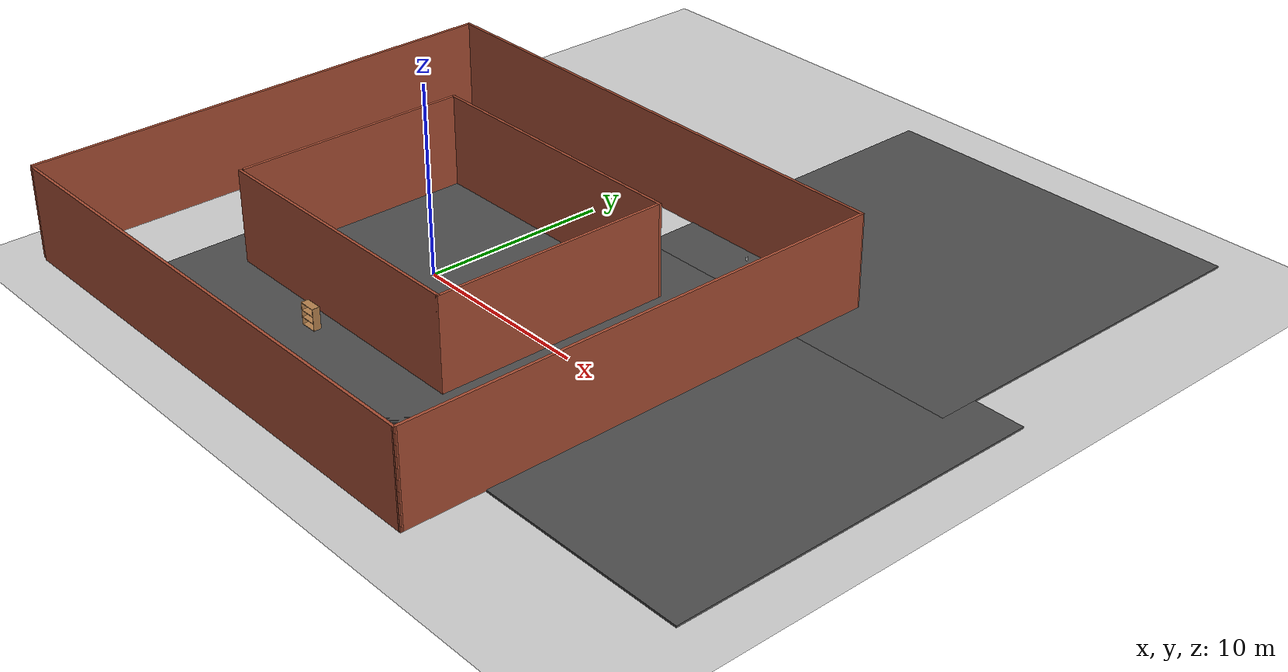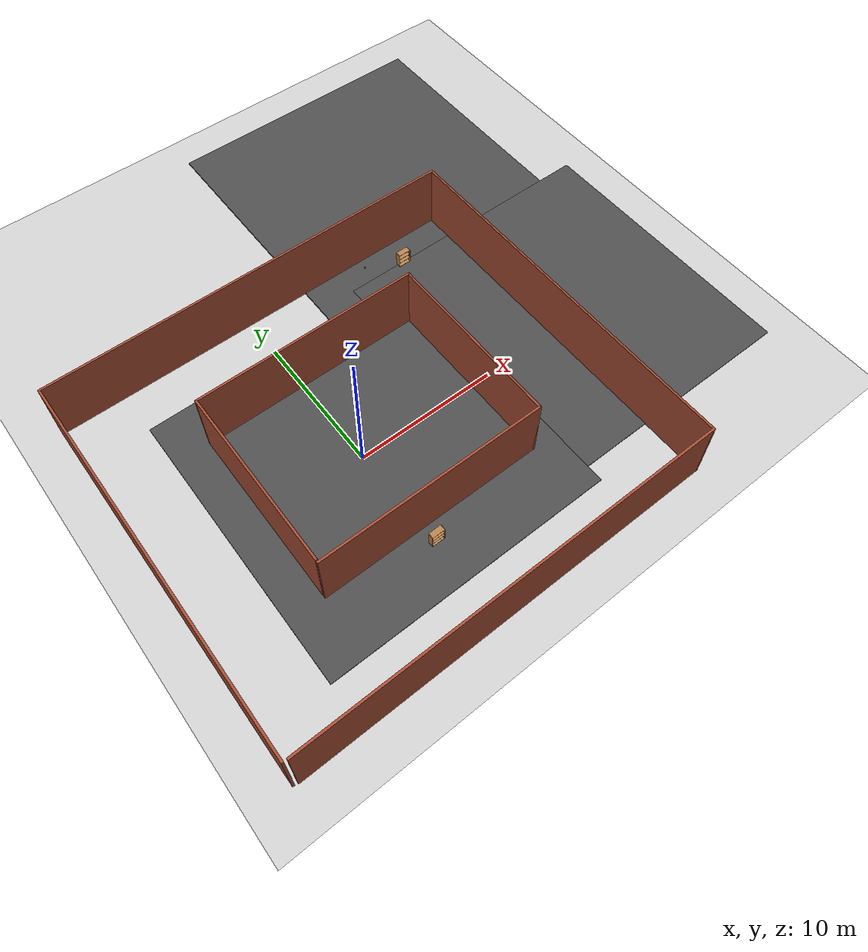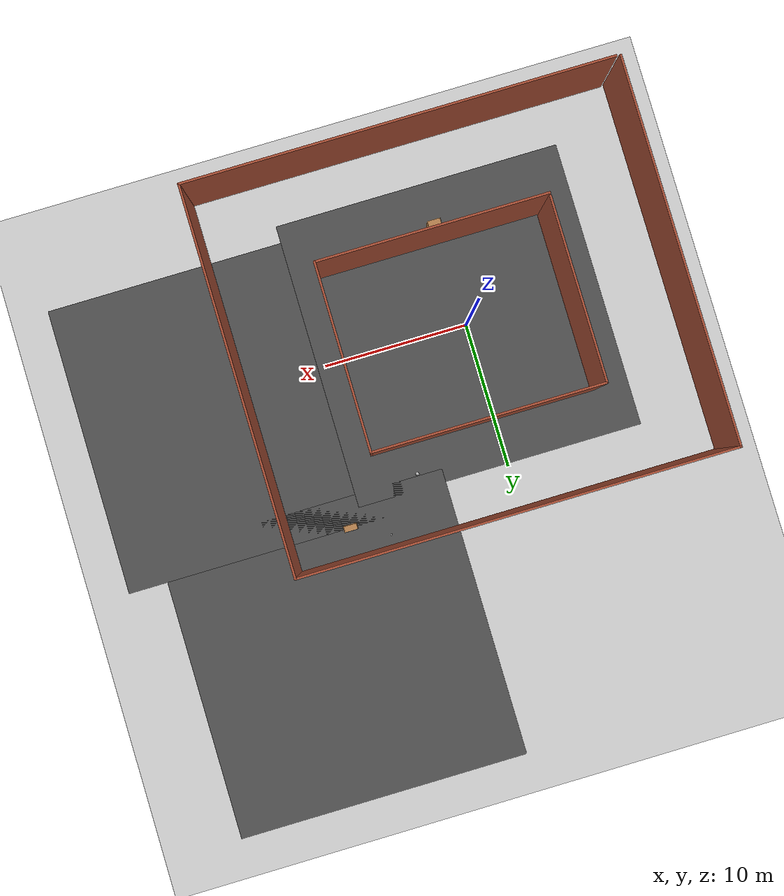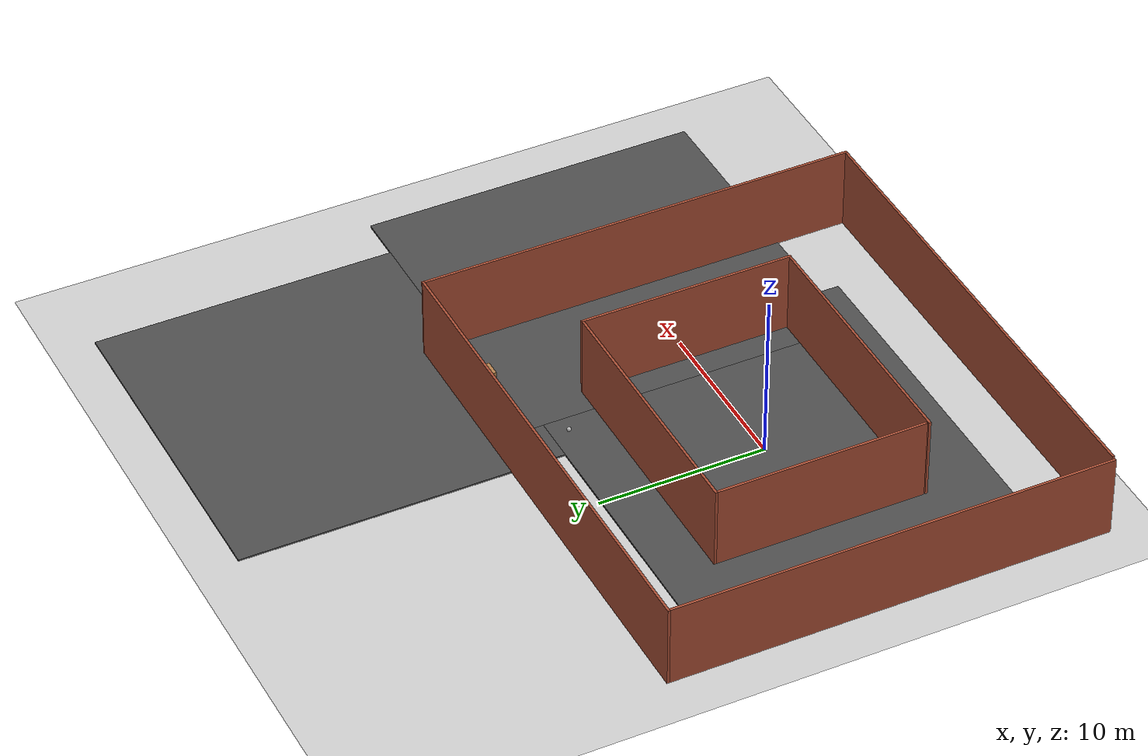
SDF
<sdf version="1.6">
 <world name="default">
  <model name="ground_plane">
   <static>1</static>
   <link name="link">
    <collision name="collision">
     <geometry><plane><normal>0 0 1</normal><size>100 100</size></plane></geometry>
     <surface>
      <contact><collide_bitmask>65535</collide_bitmask></contact>
      <friction><ode><mu>100</mu><mu2>50</mu2></ode></friction>
     </surface>
    </collision>
    <visual name="visual">
     <cast_shadows>0</cast_shadows>
     <geometry><plane><normal>0 0 1</normal><size>100 100</size></plane></geometry>
     <material>
      <script><uri>file://media/materials/scripts/gazebo.material</uri><name>Gazebo/Grey</name></script>
     </material>
    </visual>
   </link>
  </model>
  <model name="asphalt_plane">
   <static>1</static>
   <link name="link">
    <collision name="collision"><geometry><box><size>20 20 0.1</size></box></geometry></collision>
    <visual name="visual">
     <cast_shadows>0</cast_shadows>
     <geometry><box><size>20 20 0.1</size></box></geometry>
     <material>
      <script>
       <uri>model://asphalt_plane/materials/scripts</uri>
       <uri>model://asphalt_plane/materials/textures</uri>
       <name>vrc/asphalt</name>
      </script>
     </material>
    </visual>
   </link>
   <pose>0.533004 -0.175508 0 0 -0 0</pose>
  </model>
  <model name="wall_sdf">
   <pose>0.862367 -0.134255 0 0 -0 0</pose>
   <link name="Wall_17">
    <collision name="Wall_17_Collision">
     <geometry><box><size>29.25 0.15 5</size></box></geometry>
     <pose>0 0 2.5 0 -0 0</pose>
    </collision>
    <visual name="Wall_17_Visual">
     <pose>0 0 2.5 0 -0 0</pose>
     <geometry><box><size>29.25 0.15 5</size></box></geometry>
     <material>
      <script><uri>file://media/materials/scripts/gazebo.material</uri><name>Gazebo/Bricks</name></script>
      <ambient>1 1 1 1</ambient>
     </material>
     <meta><layer>0</layer></meta>
    </visual>
    <pose>0.1599 -13.0851 0 0 -0 3.4e-05</pose>
   </link>
   <link name="Wall_18">
    <collision name="Wall_18_Collision">
     <geometry><box><size>26.3201 0.15 5</size></box></geometry>
     <pose>0 0 2.5 0 -0 0</pose>
    </collision>
    <visual name="Wall_18_Visual">
     <pose>0 0 2.5 0 -0 0</pose>
     <geometry><box><size>26.3201 0.15 5</size></box></geometry>
     <material>
      <script><uri>file://media/materials/scripts/gazebo.material</uri><name>Gazebo/Bricks</name></script>
      <ambient>1 1 1 1</ambient>
     </material>
     <meta><layer>0</layer></meta>
    </visual>
    <pose>14.6749 0.000401 0 0 -0 1.57347</pose>
   </link>
   <link name="Wall_19">
    <collision name="Wall_19_Collision">
     <geometry><box><size>29.5 0.15 5</size></box></geometry>
     <pose>0 0 2.5 0 -0 0</pose>
    </collision>
    <visual name="Wall_19_Visual">
     <pose>0 0 2.5 0 -0 0</pose>
     <geometry><box><size>29.5 0.15 5</size></box></geometry>
     <material>
      <script><uri>file://media/materials/scripts/gazebo.material</uri><name>Gazebo/Bricks</name></script>
      <ambient>1 1 1 1</ambient>
     </material>
     <meta><layer>0</layer></meta>
    </visual>
    <pose>-0.0351 13.0854 0 0 -0 3.14159</pose>
   </link>
   <link name="Wall_20">
    <collision name="Wall_20_Collision">
     <geometry><box><size>26.25 0.15 5</size></box></geometry>
     <pose>0 0 2.5 0 -0 0</pose>
    </collision>
    <visual name="Wall_20_Visual">
     <pose>0 0 2.5 0 -0 0</pose>
     <geometry><box><size>26.25 0.15 5</size></box></geometry>
     <material>
      <script><uri>file://media/materials/scripts/gazebo.material</uri><name>Gazebo/Bricks</name></script>
      <ambient>1 1 1 1</ambient>
     </material>
     <meta><layer>0</layer></meta>
    </visual>
    <pose>-14.7101 0.035402 0 0 -0 -1.5708</pose>
   </link>
   <link name="Wall_23">
    <collision name="Wall_23_Collision">
     <geometry><box><size>15.75 0.15 5</size></box></geometry>
     <pose>0 0 2.5 0 -0 0</pose>
    </collision>
    <visual name="Wall_23_Visual">
     <pose>0 0 2.5 0 -0 0</pose>
     <geometry><box><size>15.75 0.15 5</size></box></geometry>
     <material>
      <script><uri>file://media/materials/scripts/gazebo.material</uri><name>Gazebo/Bricks</name></script>
      <ambient>1 1 1 1</ambient>
     </material>
     <meta><layer>0</layer></meta>
    </visual>
    <pose>0.0229 -5.8436 0 0 -0 0</pose>
   </link>
   <link name="Wall_24">
    <collision name="Wall_24_Collision">
     <geometry><box><size>12.786 0.15 5</size></box></geometry>
     <pose>0 0 2.5 0 -0 0</pose>
    </collision>
    <visual name="Wall_24_Visual">
     <pose>0 0 2.5 0 -0 0</pose>
     <geometry><box><size>12.786 0.15 5</size></box></geometry>
     <material>
      <script><uri>file://media/materials/scripts/gazebo.material</uri><name>Gazebo/Bricks</name></script>
      <ambient>1 1 1 1</ambient>
     </material>
     <meta><layer>0</layer></meta>
    </visual>
    <pose>7.8229 0.474401 0 0 -0 1.5708</pose>
   </link>
   <link name="Wall_25">
    <collision name="Wall_25_Collision">
     <geometry><box><size>15.75 0.15 5</size></box></geometry>
     <pose>0 0 2.5 0 -0 0</pose>
    </collision>
    <visual name="Wall_25_Visual">
     <pose>0 0 2.5 0 -0 0</pose>
     <geometry><box><size>15.75 0.15 5</size></box></geometry>
     <material>
      <script><uri>file://media/materials/scripts/gazebo.material</uri><name>Gazebo/Bricks</name></script>
      <ambient>1 1 1 1</ambient>
     </material>
     <meta><layer>0</layer></meta>
    </visual>
    <pose>0.0229 6.7924 0 0 -0 3.14159</pose>
   </link>
   <link name="Wall_26">
    <collision name="Wall_26_Collision">
     <geometry><box><size>12.571 0.15 5</size></box></geometry>
     <pose>0 0 2.5 0 -0 0</pose>
    </collision>
    <visual name="Wall_26_Visual">
     <pose>0 0 2.5 0 -0 0</pose>
     <geometry><box><size>12.571 0.15 5</size></box></geometry>
     <material>
      <script><uri>file://media/materials/scripts/gazebo.material</uri><name>Gazebo/Bricks</name></script>
      <ambient>1 1 1 1</ambient>
     </material>
     <meta><layer>0</layer></meta>
    </visual>
    <pose>-7.7771 0.581902 0 0 -0 -1.5708</pose>
   </link>
   <static>1</static>
  </model>
  <model name="asphalt_plane_4">
   <static>1</static>
   <link name="link">
    <collision name="collision"><geometry><box><size>20 20 0.1</size></box></geometry></collision>
    <visual name="visual">
     <cast_shadows>0</cast_shadows>
     <geometry><box><size>20 20 0.1</size></box></geometry>
     <material>
      <script>
       <uri>model://asphalt_plane/materials/scripts</uri>
       <uri>model://asphalt_plane/materials/textures</uri>
       <name>vrc/asphalt</name>
      </script>
     </material>
    </visual>
   </link>
   <pose>17.0836 1.00489 0 0 -0 0</pose>
  </model>
  <model name="asphalt_plane_5">
   <static>1</static>
   <link name="link">
    <collision name="collision"><geometry><box><size>20 20 0.1</size></box></geometry></collision>
    <visual name="visual">
     <cast_shadows>0</cast_shadows>
     <geometry><box><size>20 20 0.1</size></box></geometry>
     <material>
      <script>
       <uri>model://asphalt_plane/materials/scripts</uri>
       <uri>model://asphalt_plane/materials/textures</uri>
       <name>vrc/asphalt</name>
      </script>
     </material>
    </visual>
   </link>
   <pose>14.3755 18.9058 0 0 -0 0</pose>
  </model>
  <model name="beer">
   <link name="link">
    <pose>0 0 0.115 0 -0 0</pose>
    <inertial>
     <mass>0.39</mass>
     <inertia><ixx>0.00058</ixx><ixy>0</ixy><ixz>0</ixz><iyy>0.00058</iyy><iyz>0</iyz><izz>0.00019</izz></inertia>
    </inertial>
    <collision name="collision">
     <geometry><cylinder><radius>0.055</radius><length>0.23</length></cylinder></geometry>
    </collision>
    <visual name="visual">
     <geometry><cylinder><radius>0.055</radius><length>0.23</length></cylinder></geometry>
     <material>
      <script>
       <uri>model://beer/materials/scripts</uri>
       <uri>model://beer/materials/textures</uri>
       <name>Beer/Diffuse</name>
      </script>
     </material>
    </visual>
   </link>
   <pose>8.91739 12.208 0 0 -0 0</pose>
  </model>
  <model name="bookshelf">
   <static>1</static>
   <link name="link">
    <inertial><mass>1</mass></inertial>
    <collision name="back">
     <pose>0 0.005 0.6 0 -0 0</pose>
     <geometry><box><size>0.9 0.01 1.2</size></box></geometry>
    </collision>
    <visual name="visual1">
     <pose>0 0.005 0.6 0 -0 0</pose>
     <geometry><box><size>0.9 0.01 1.2</size></box></geometry>
     <material>
      <script><uri>file://media/materials/scripts/gazebo.material</uri><name>Gazebo/Wood</name></script>
     </material>
    </visual>
    <collision name="left_side">
     <pose>0.45 -0.195 0.6 0 -0 0</pose>
     <geometry><box><size>0.02 0.4 1.2</size></box></geometry>
    </collision>
    <visual name="visual2">
     <pose>0.45 -0.195 0.6 0 -0 0</pose>
     <geometry><box><size>0.02 0.4 1.2</size></box></geometry>
     <material>
      <script><uri>file://media/materials/scripts/gazebo.material</uri><name>Gazebo/Wood</name></script>
     </material>
    </visual>
    <collision name="right_side">
     <pose>-0.45 -0.195 0.6 0 -0 0</pose>
     <geometry><box><size>0.02 0.4 1.2</size></box></geometry>
    </collision>
    <visual name="visual3">
     <pose>-0.45 -0.195 0.6 0 -0 0</pose>
     <geometry><box><size>0.02 0.4 1.2</size></box></geometry>
     <material>
      <script><uri>file://media/materials/scripts/gazebo.material</uri><name>Gazebo/Wood</name></script>
     </material>
    </visual>
    <collision name="bottom">
     <pose>0 -0.195 0.03 0 -0 0</pose>
     <geometry><box><size>0.88 0.4 0.06</size></box></geometry>
    </collision>
    <visual name="visual4">
     <pose>0 -0.195 0.03 0 -0 0</pose>
     <geometry><box><size>0.88 0.4 0.06</size></box></geometry>
     <material>
      <script><uri>file://media/materials/scripts/gazebo.material</uri><name>Gazebo/Wood</name></script>
     </material>
    </visual>
    <collision name="top">
     <pose>0 -0.195 1.19 0 -0 0</pose>
     <geometry><box><size>0.88 0.4 0.02</size></box></geometry>
    </collision>
    <visual name="visual5">
     <pose>0 -0.195 1.19 0 -0 0</pose>
     <geometry><box><size>0.88 0.4 0.02</size></box></geometry>
     <material>
      <script><uri>file://media/materials/scripts/gazebo.material</uri><name>Gazebo/Wood</name></script>
     </material>
    </visual>
    <collision name="low_shelf">
     <pose>0 -0.195 0.43 0 -0 0</pose>
     <geometry><box><size>0.88 0.4 0.02</size></box></geometry>
    </collision>
    <visual name="visual6">
     <pose>0 -0.195 0.43 0 -0 0</pose>
     <geometry><box><size>0.88 0.4 0.02</size></box></geometry>
     <material>
      <script><uri>file://media/materials/scripts/gazebo.material</uri><name>Gazebo/Wood</name></script>
     </material>
    </visual>
    <collision name="high_shelf">
     <pose>0 -0.195 0.8 0 -0 0</pose>
     <geometry><box><size>0.88 0.4 0.02</size></box></geometry>
    </collision>
    <visual name="visual7">
     <pose>0 -0.195 0.8 0 -0 0</pose>
     <geometry><box><size>0.88 0.4 0.02</size></box></geometry>
     <material>
      <script><uri>file://media/materials/scripts/gazebo.material</uri><name>Gazebo/Wood</name></script>
     </material>
    </visual>
   </link>
   <pose>11.4087 11.1567 0 0 -0 0</pose>
  </model>
  <model name="bookshelf_0">
   <static>1</static>
   <link name="link">
    <inertial><mass>1</mass></inertial>
    <collision name="back">
     <pose>0 0.005 0.6 0 -0 0</pose>
     <geometry><box><size>0.9 0.01 1.2</size></box></geometry>
    </collision>
    <visual name="visual1">
     <pose>0 0.005 0.6 0 -0 0</pose>
     <geometry><box><size>0.9 0.01 1.2</size></box></geometry>
     <material>
      <script><uri>file://media/materials/scripts/gazebo.material</uri><name>Gazebo/Wood</name></script>
     </material>
    </visual>
    <collision name="left_side">
     <pose>0.45 -0.195 0.6 0 -0 0</pose>
     <geometry><box><size>0.02 0.4 1.2</size></box></geometry>
    </collision>
    <visual name="visual2">
     <pose>0.45 -0.195 0.6 0 -0 0</pose>
     <geometry><box><size>0.02 0.4 1.2</size></box></geometry>
     <material>
      <script><uri>file://media/materials/scripts/gazebo.material</uri><name>Gazebo/Wood</name></script>
     </material>
    </visual>
    <collision name="right_side">
     <pose>-0.45 -0.195 0.6 0 -0 0</pose>
     <geometry><box><size>0.02 0.4 1.2</size></box></geometry>
    </collision>
    <visual name="visual3">
     <pose>-0.45 -0.195 0.6 0 -0 0</pose>
     <geometry><box><size>0.02 0.4 1.2</size></box></geometry>
     <material>
      <script><uri>file://media/materials/scripts/gazebo.material</uri><name>Gazebo/Wood</name></script>
     </material>
    </visual>
    <collision name="bottom">
     <pose>0 -0.195 0.03 0 -0 0</pose>
     <geometry><box><size>0.88 0.4 0.06</size></box></geometry>
    </collision>
    <visual name="visual4">
     <pose>0 -0.195 0.03 0 -0 0</pose>
     <geometry><box><size>0.88 0.4 0.06</size></box></geometry>
     <material>
      <script><uri>file://media/materials/scripts/gazebo.material</uri><name>Gazebo/Wood</name></script>
     </material>
    </visual>
    <collision name="top">
     <pose>0 -0.195 1.19 0 -0 0</pose>
     <geometry><box><size>0.88 0.4 0.02</size></box></geometry>
    </collision>
    <visual name="visual5">
     <pose>0 -0.195 1.19 0 -0 0</pose>
     <geometry><box><size>0.88 0.4 0.02</size></box></geometry>
     <material>
      <script><uri>file://media/materials/scripts/gazebo.material</uri><name>Gazebo/Wood</name></script>
     </material>
    </visual>
    <collision name="low_shelf">
     <pose>0 -0.195 0.43 0 -0 0</pose>
     <geometry><box><size>0.88 0.4 0.02</size></box></geometry>
    </collision>
    <visual name="visual6">
     <pose>0 -0.195 0.43 0 -0 0</pose>
     <geometry><box><size>0.88 0.4 0.02</size></box></geometry>
     <material>
      <script><uri>file://media/materials/scripts/gazebo.material</uri><name>Gazebo/Wood</name></script>
     </material>
    </visual>
    <collision name="high_shelf">
     <pose>0 -0.195 0.8 0 -0 0</pose>
     <geometry><box><size>0.88 0.4 0.02</size></box></geometry>
    </collision>
    <visual name="visual7">
     <pose>0 -0.195 0.8 0 -0 0</pose>
     <geometry><box><size>0.88 0.4 0.02</size></box></geometry>
     <material>
      <script><uri>file://media/materials/scripts/gazebo.material</uri><name>Gazebo/Wood</name></script>
     </material>
    </visual>
   </link>
   <pose>0.189733 -6.9188 0 0 -0 0</pose>
  </model>
  <model name="frc2016_ball">
   <pose>6.07036 8.77175 0.127 0 -0 0</pose>
   <link name="link">
    <inertial>
     <mass>0.213</mass>
     <inertia>
      <ixx>0.00322667</ixx>
      <ixy>0</ixy>
      <ixz>0</ixz>
      <iyy>0.00322667</iyy>
      <iyz>0</iyz>
      <izz>0.00322667</izz>
     </inertia>
    </inertial>
    <visual name="visual"><geometry><sphere><radius>0.127</radius></sphere></geometry></visual>
    <collision name="collision">
     <geometry><sphere><radius>0.127</radius></sphere></geometry>
     <surface>
      <bounce><restitution_coefficient>0.15937</restitution_coefficient><threshold>0</threshold></bounce>
      <contact><ode><max_vel>100</max_vel><min_depth>0.001</min_depth></ode></contact>
     </surface>
    </collision>
   </link>
  </model>
  <include><uri>model://sun</uri></include>
 </world>
</sdf>
